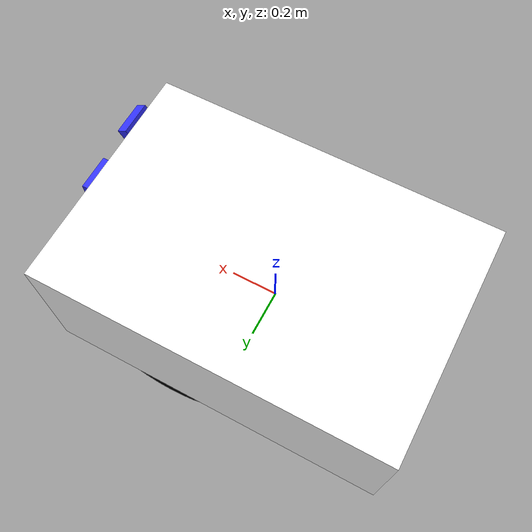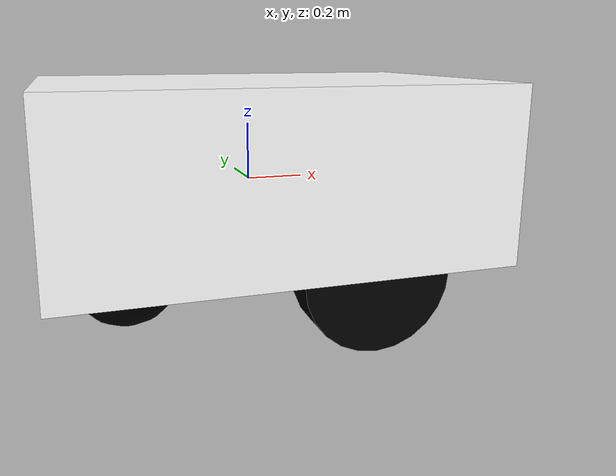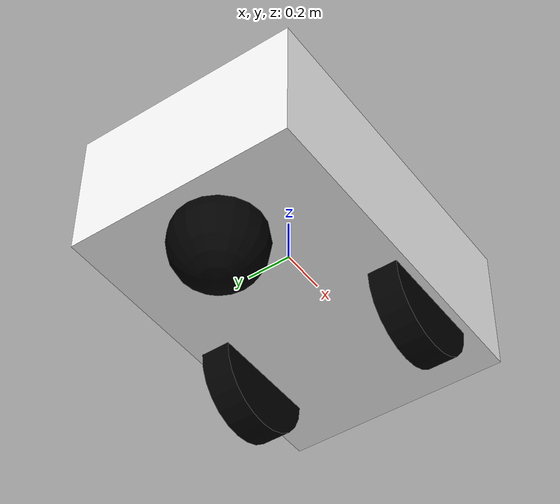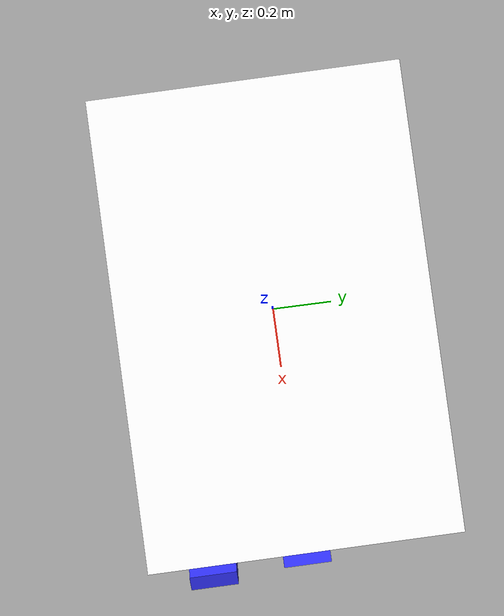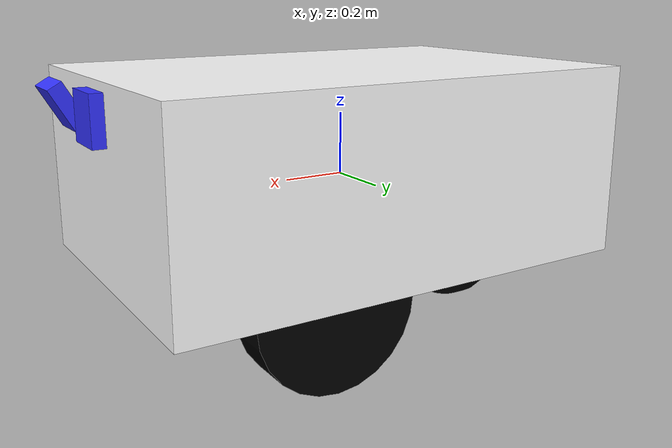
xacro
<?xml version="1.0"?>
<robot xmlns:xacro="http://www.ros.org/wiki/xacro"  name="robot">

    <xacro:include filename="robot_core.urdf.xacro" />

    <xacro:include filename="gazebo_control.xacro" />
    <xacro:include filename="depthcamera.urdf.xacro" />

    <xacro:include filename="depthcam2.urdf.xacro" />

</robot>

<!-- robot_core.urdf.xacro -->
<robot xmlns:xacro="http://www.ros.org/wiki/xacro">

    <xacro:include filename="inertial.urdf.xacro"/>

    <material name="white">
        <color rgba="1 1 1 1" />
    </material>

    <material name="orange">
        <color rgba="1 0.3 0.1 1" />
    </material>

    <material name="blue">
        <color rgba="0.2 0.2 1 1" />
    </material>

    <material name="black">
        <color rgba="0 0 0 1" />
    </material>

<!--base link-->
    <link name="base_link">

    </link>
<!--BASE_FOOTPRINT LINK-->
    <joint name="base_footprint_joint" type="fixed">
        <parent link="base_link"/>
        <child link="base_footprint"/>
        <origin xyz="0 0 0" rpy="0 0 0"/>
    </joint>

    <link name="base_footprint">
    </link>

<!--chassis link-->

    <joint name="chassis_joint" type="fixed">
        <parent link="base_link"/>
        <child link="chassis"/>
        <origin xyz="-0.1 0 0"/>

    </joint>

    <link name="chassis">
        <visual>
            <origin xyz="0.135 0 0.052885"/>
            <geometry>
                <box size="1.5 1 0.6"/>
            </geometry>
            <material name="white"/>
        </visual>
        <collision>
            <origin xyz="0.135 0 0.052885"/>
            <geometry>
                <box size="1.5 1 0.6"/>
            </geometry>
        </collision>

        <xacro:inertial_box mass="70" x="0.27" y="0.168" z="0.10577">
            <origin xyz="0.135 0 0.052885" rpy="0 0 0"/>

        </xacro:inertial_box>

    </link>
    <gazebo reference="chassis">
        <material>Gazebo/white</material>
    </gazebo>

<!--Left wheel link-->

    <joint name="left_wheel_joint" type="continuous">
        <parent link="base_link"/>
        <child link="left_wheel"/>
        <origin xyz="0.3 0.4 -0.25" rpy="-${pi/2} 0 0"/>  <!-- we are rotating the whole bot 90 degrees wrt x axis..-->
        <axis xyz="0 0 1"/>
    </joint>

    <link name="left_wheel">
        <visual>
            <geometry>
                <cylinder radius="0.25" length="0.130"/>
            </geometry>
            <material name="black"/>
        </visual>
        <collision>
            <geometry>
                <sphere radius="0.25"/>
            </geometry>
        </collision>
        <xacro:inertial_cylinder mass="10" length="0.130" radius="0.25">
            <origin xyz = "0 0 0" rpy = "0 0 0 "/>
        </xacro:inertial_cylinder>
        </link>

        <gazebo reference="left_wheel">
            <material>Gazebo/Black</material>
        </gazebo>

<!--Right wheel link-->

    <joint name="right_wheel_joint" type="continuous">
        <parent link="base_link"/>
        <child link="right_wheel"/>
        <origin xyz="0.3 -0.4 -0.25" rpy="${pi/2} 0 0"/>  <!-- we are rotating the whole bot 90 degrees wrt x axis..-->
        <axis xyz="0 0 -1"/>
    </joint>

    <link name="right_wheel">
        <visual>
            <geometry>
                <cylinder radius="0.25" length="0.130"/>
            </geometry>
            <material name="black"/>
        </visual>
        <collision>
            <geometry>
                <sphere radius="0.25"/>
            </geometry>
            <material name="black"/>
        </collision>
        <xacro:inertial_cylinder mass="10" length="0.130" radius="0.25">
            <origin xyz = "0 0 0" rpy = "0 0 0 "/>
        </xacro:inertial_cylinder>
    </link>

    <gazebo reference="right_wheel">
        <material>Gazebo/Black</material>
    </gazebo>

    <!--Caster wheel -->
    <joint name="caster_wheel_left_joint" type="fixed">
        <parent link="chassis"/>
        <child link="caster_wheel_left"/>
        <origin xyz="-0.35 0 -0.3"/>
    </joint>

    <link name="caster_wheel_left">
        <visual>
            <geometry>
                <sphere radius="0.2"/>
            </geometry>
            <material name="black"/>
        </visual>
        <collision>
            <geometry>
                <sphere radius="0.2"/>
            </geometry>
            <material name="black"/>
        </collision>
        <xacro:inertial_sphere mass="5" radius="0.2">
            <origin xyz="0 0 0" rpy="0 0 0"/>
        </xacro:inertial_sphere>
    </link>
    <gazebo reference="caster_wheel_left">
        <material>Gazebo/Black</material>
        <mu1 value="0.01"/>
        <mu2 value="0.01"/>

    </gazebo>

</robot>

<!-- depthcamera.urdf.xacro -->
<robot xmlns:xacro="http://www.ros.org/wiki/xacro" >

    <joint name="camera_joint" type="fixed">
        <parent link="chassis"/>
        <child link="camera_link"/>
        <origin xyz="0.9 0 0.25" rpy="0 0 0"/>
    </joint>

    <link name="camera_link">
        <visual>
            <geometry>
                <box size="0.05 0.15 0.15"/>
            </geometry>
            <material name="blue"/>
        </visual>
    </link>

    <joint name="camera_optical_joint" type="fixed">
        <parent link="camera_link"/>
        <child link="camera_link_optical"/>
        <origin xyz="0 0 0" rpy="${-pi/2} 0 ${-pi/2}"/>
    </joint>

    <link name="camera_link_optical"></link>

    <gazebo reference="camera_link">
        <material>Gazebo/Red</material>

        <sensor name="camera" type="depth">
            <pose> 0 0 0 0 0 0 </pose>
            <visualize>true</visualize>
            <update_rate>10</update_rate>
            <camera>
                <horizontal_fov>1.089</horizontal_fov>
                <image>
                    <format>B8G8R8</format>
                    <width>640</width>
                    <height>480</height>
                </image>
            </camera>
            <plugin name="camera_controller" filename="libgazebo_ros_camera.so">
                <frame_name>camera_link_optical</frame_name>
                <min_depth>0.1</min_depth>
                <max_depth>100.0</max_depth>
            </plugin>
        </sensor>

    </gazebo>

</robot>

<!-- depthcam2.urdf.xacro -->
<robot xmlns:xacro="http://www.ros.org/wiki/xacro" >

    <joint name="camera_joint2" type="fixed">
        <parent link="chassis"/>
        <child link="camera_link2"/>
        <origin xyz="0.9 -0.3 0.25" rpy="0 ${pi/6} 0"/>
    </joint>

    <link name="camera_link2">
        <visual>
            <geometry>
                <box size="0.05 0.15 0.15"/>
            </geometry>
            <material name="blue"/>
        </visual>
    </link>

    <joint name="camera_optical_joint2" type="fixed">
        <parent link="camera_link2"/>
        <child link="camera_link_optical2"/>
        <origin xyz="0 0 0" rpy="${-pi/2} 0 ${-pi/2}"/>
    </joint>

    <link name="camera_link_optical2"></link>

    <gazebo reference="camera_link2">
        <material>Gazebo/Red</material>

        <sensor name="camera" type="depth">
            <pose> 0 0 0 0 0 0 </pose>
            <visualize>true</visualize>
            <update_rate>10</update_rate>
            <camera>
                <horizontal_fov>1.089</horizontal_fov>
                <image>
                    <format>B8G8R8</format>
                    <width>640</width>
                    <height>480</height>
                </image>
            </camera>
            <plugin name="camera_controller2" filename="libgazebo_ros_camera.so">
                <frame_name>camera_link_optical</frame_name>
                <min_depth>0.1</min_depth>
                <max_depth>100.0</max_depth>
            </plugin>
        </sensor>

    </gazebo>

</robot>
